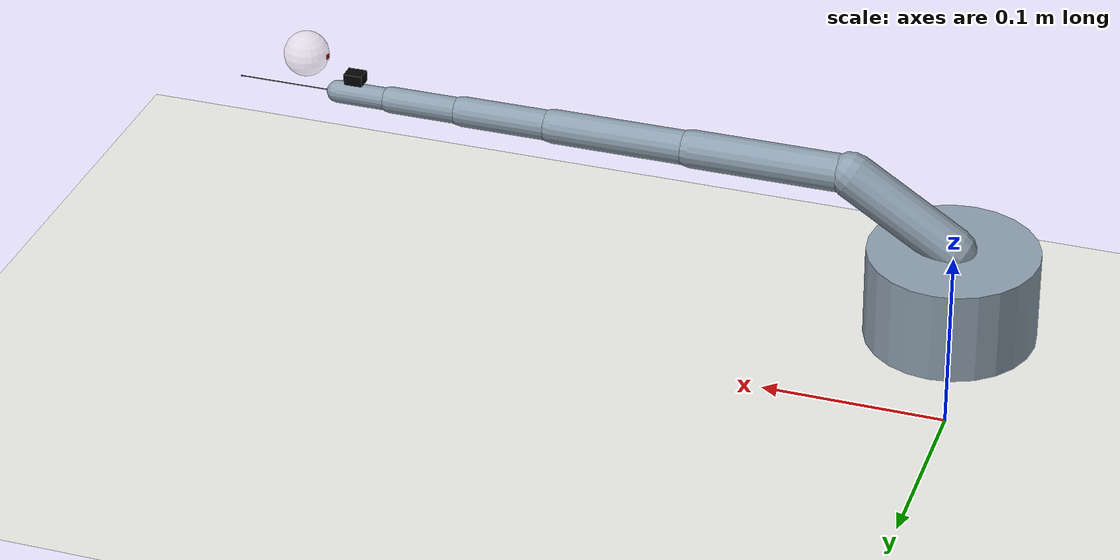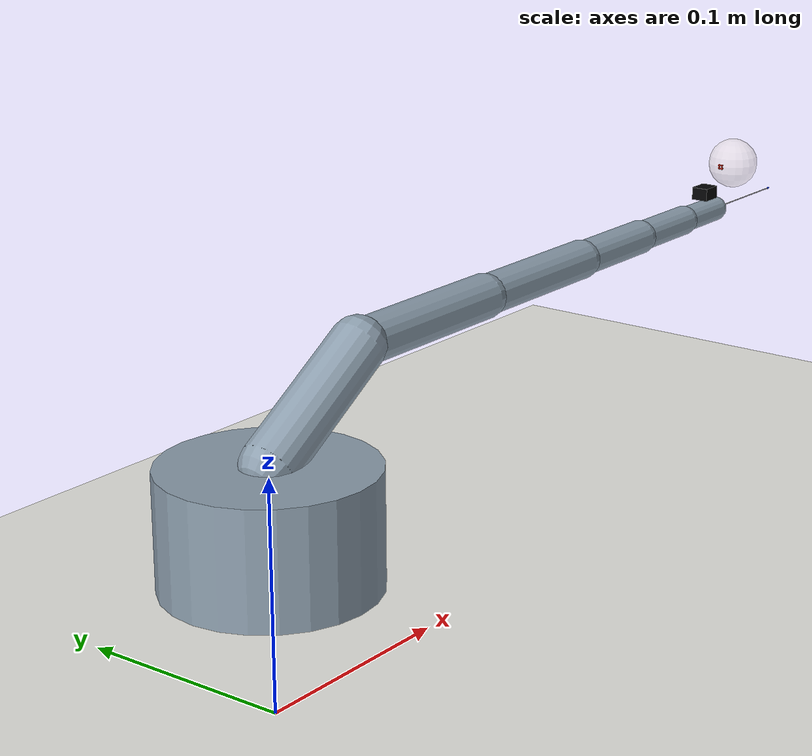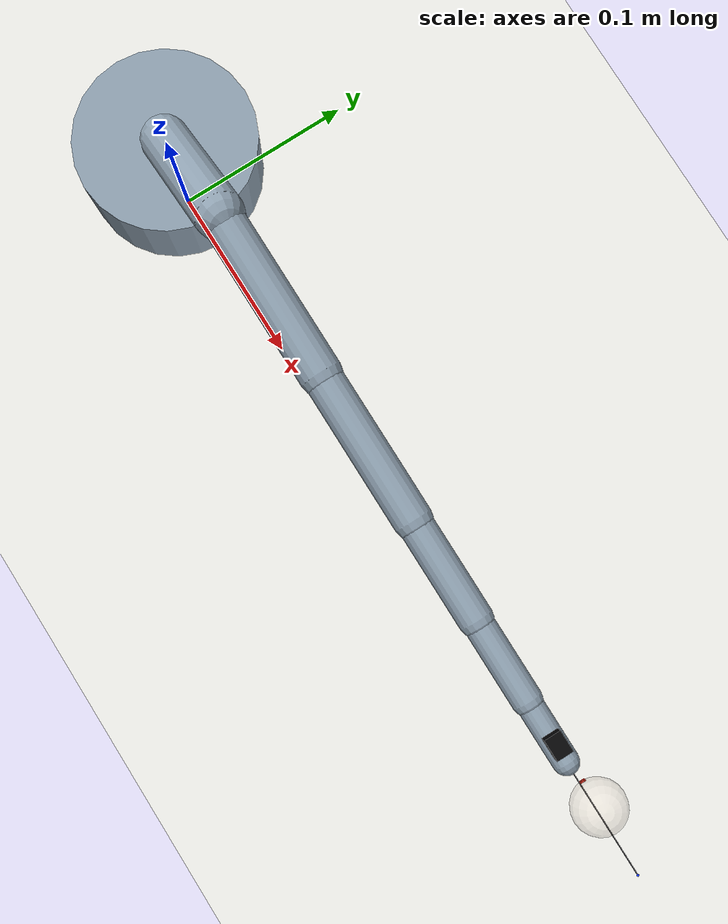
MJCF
<mujoco model="single_arm_ophthalmic_trocar_sidecar">
  <compiler angle="radian" coordinate="local"/>
  <option timestep="0.002" gravity="0 0 0" integrator="implicitfast"/>

  <default>
    <joint damping="0.04" armature="0.002" limited="true"/>
    <geom margin="0.0002" solref="0.01 1" solimp="0.9 0.95 0.001"/>
  </default>

  <asset>
    <material name="arm_mat" rgba="0.55 0.62 0.68 1"/>
    <material name="tool_mat" rgba="0.08 0.08 0.09 1"/>
    <material name="port_mat" rgba="0.85 0.18 0.12 1"/>
    <material name="eye_mat" rgba="0.95 0.90 0.84 0.35"/>
  </asset>

  <worldbody>
    <light name="key_light" pos="0 -0.5 0.7" dir="0.2 0.7 -1"/>
    <geom name="ground" type="plane" pos="0 0 0" size="1 1 0.01" rgba="0.92 0.92 0.90 1" contype="0" conaffinity="0"/>

    <geom name="eye_surface" type="sphere" pos="0.352 0 0.16" size="0.012" material="eye_mat" contype="0" conaffinity="0"/>
    <geom name="port_wall_y_pos" type="box" pos="0.34 0.00075 0.16" size="0.00035 0.00025 0.00125" material="port_mat" contype="1" conaffinity="1"/>
    <geom name="port_wall_y_neg" type="box" pos="0.34 -0.00075 0.16" size="0.00035 0.00025 0.00125" material="port_mat" contype="1" conaffinity="1"/>
    <geom name="port_wall_z_pos" type="box" pos="0.34 0 0.16075" size="0.00035 0.00125 0.00025" material="port_mat" contype="1" conaffinity="1"/>
    <geom name="port_wall_z_neg" type="box" pos="0.34 0 0.15925" size="0.00035 0.00125 0.00025" material="port_mat" contype="1" conaffinity="1"/>

    <body name="base" pos="0 0 0.08">
      <geom name="base_geom" type="cylinder" size="0.045 0.025" material="arm_mat" contype="0" conaffinity="0"/>
      <body name="link1" pos="0 0 0.025">
        <joint name="j1" type="hinge" axis="0 0 1" range="-3.14 3.14"/>
        <geom name="link1_geom" type="capsule" fromto="0 0 0 0.055 0 0.035" size="0.012" material="arm_mat" contype="0" conaffinity="0"/>
        <body name="link2" pos="0.055 0 0.035">
          <joint name="j2" type="hinge" axis="0 1 0" range="-2.80 2.80"/>
          <geom name="link2_geom" type="capsule" fromto="0 0 0 0.085 0 0" size="0.010" material="arm_mat" contype="0" conaffinity="0"/>
          <body name="link3" pos="0.085 0 0">
            <joint name="j3" type="hinge" axis="0 1 0" range="-2.80 2.80"/>
            <geom name="link3_geom" type="capsule" fromto="0 0 0 0.075 0 0" size="0.009" material="arm_mat" contype="0" conaffinity="0"/>
            <body name="link4" pos="0.075 0 0">
              <joint name="j4" type="hinge" axis="1 0 0" range="-3.14 3.14"/>
              <geom name="link4_geom" type="capsule" fromto="0 0 0 0.050 0 0" size="0.008" material="arm_mat" contype="0" conaffinity="0"/>
              <body name="link5" pos="0.050 0 0">
                <joint name="j5" type="hinge" axis="0 1 0" range="-3.14 3.14"/>
                <geom name="link5_geom" type="capsule" fromto="0 0 0 0.040 0 0" size="0.007" material="arm_mat" contype="0" conaffinity="0"/>
                <body name="link6" pos="0.040 0 0">
                  <joint name="j6" type="hinge" axis="1 0 0" range="-3.14 3.14"/>
                  <geom name="link6_geom" type="capsule" fromto="0 0 0 0.030 0 0" size="0.006" material="arm_mat" contype="0" conaffinity="0"/>
                  <body name="instrument" pos="0.030 0 0">
                    <geom name="eye_in_hand_camera_body" type="box" pos="-0.010 0 0.010" size="0.005 0.004 0.003" rgba="0.02 0.02 0.025 1" contype="0" conaffinity="0"/>
                    <camera name="eye_in_hand" mode="fixed" pos="-0.010 0 0.010" xyaxes="0 -1 0 0 0 1" fovy="41.9741"/>
                    <geom name="instrument_shaft" type="capsule" fromto="0 0 0 0.055 0 0" size="0.000255" material="tool_mat" contype="1" conaffinity="1" density="7800"/>
                    <site name="tool_tip" pos="0.055 0 0" size="0.00055" rgba="0.05 0.2 1 1"/>
                  </body>
                </body>
              </body>
            </body>
          </body>
        </body>
      </body>
    </body>
  </worldbody>

  <actuator>
    <position name="a1" joint="j1" kp="450" ctrlrange="-3.14 3.14"/>
    <position name="a2" joint="j2" kp="450" ctrlrange="-2.80 2.80"/>
    <position name="a3" joint="j3" kp="450" ctrlrange="-2.80 2.80"/>
    <position name="a4" joint="j4" kp="300" ctrlrange="-3.14 3.14"/>
    <position name="a5" joint="j5" kp="300" ctrlrange="-3.14 3.14"/>
    <position name="a6" joint="j6" kp="250" ctrlrange="-3.14 3.14"/>
  </actuator>
</mujoco>
